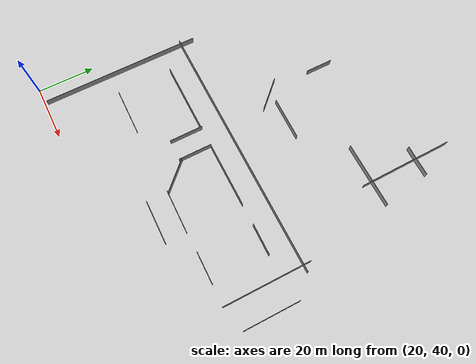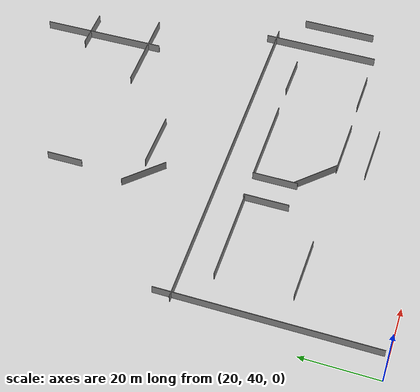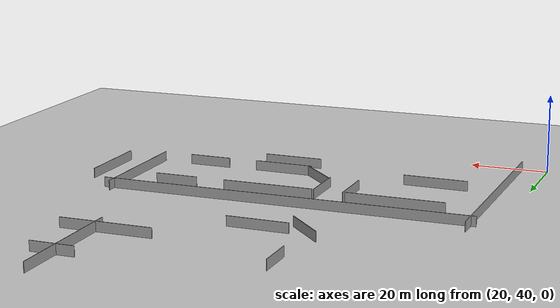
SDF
<sdf version="1.6">
 <world name="default">
  <model name="ground_plane">
   <static>1</static>
   <link name="link">
    <collision name="collision">
     <geometry><plane><normal>0 0 1</normal><size>100 100</size></plane></geometry>
     <surface>
      <contact><collide_bitmask>65535</collide_bitmask></contact>
      <friction><ode><mu>100</mu><mu2>50</mu2></ode></friction>
     </surface>
    </collision>
    <visual name="visual">
     <cast_shadows>0</cast_shadows>
     <geometry><plane><normal>0 0 1</normal><size>100 100</size></plane></geometry>
     <material>
      <script><uri>file://media/materials/scripts/gazebo.material</uri><name>Gazebo/Grey</name></script>
     </material>
    </visual>
   </link>
  </model>
  <model name="en_uzun_duvar2_clone">
   <link name="Wall_2">
    <inertial>
     <inertia><ixx>0</ixx><ixy>0</ixy><ixz>0</ixz><iyy>0</iyy><iyz>0</iyz><izz>0</izz></inertia>
     <mass>0</mass>
    </inertial>
    <visual name="Wall_2_Visual">
     <pose>0 0 1.25 0 -0 0</pose>
     <geometry><box><size>94.4523 0.15 2.5</size></box></geometry>
     <material>
      <script><uri>file://media/materials/scripts/gazebo.material</uri><name>Gazebo/Grey</name></script>
      <ambient>1 1 1 1</ambient>
     </material>
     <meta><layer>0</layer></meta>
    </visual>
    <collision name="Wall_2_Collision">
     <pose>0 0 1.25 0 -0 0</pose>
     <geometry><box><size>94.4523 0.15 2.5</size></box></geometry>
     <surface>
      <friction>
       <ode><mu>1</mu><mu2>1</mu2><fdir1>0 0 0</fdir1><slip1>0</slip1><slip2>0</slip2></ode>
       <torsional>
        <coefficient>1</coefficient>
        <patch_radius>0</patch_radius>
        <surface_radius>0</surface_radius>
        <use_patch_radius>1</use_patch_radius>
        <ode><slip>0</slip></ode>
       </torsional>
      </friction>
      <bounce><restitution_coefficient>0</restitution_coefficient><threshold>1e+06</threshold></bounce>
      <contact>
       <collide_without_contact>0</collide_without_contact>
       <collide_without_contact_bitmask>1</collide_without_contact_bitmask>
       <collide_bitmask>1</collide_bitmask>
       <ode>
        <soft_cfm>0</soft_cfm>
        <soft_erp>0.2</soft_erp>
        <kp>1e+13</kp>
        <kd>1</kd>
        <max_vel>0.01</max_vel>
        <min_depth>0</min_depth>
       </ode>
       <bullet>
        <split_impulse>1</split_impulse>
        <split_impulse_penetration_threshold>-0.01</split_impulse_penetration_threshold>
        <soft_cfm>0</soft_cfm>
        <soft_erp>0.2</soft_erp>
        <kp>1e+13</kp>
        <kd>1</kd>
       </bullet>
      </contact>
     </surface>
    </collision>
   </link>
   <static>1</static>
   <pose>72.3354 92.6336 0 0 -0 0</pose>
  </model>
  <model name="en_uzun_duvar2_clone_1">
   <link name="Wall_2">
    <pose>3.61471 -1e-06 0 0 -0 0</pose>
    <inertial>
     <inertia><ixx>0</ixx><ixy>0</ixy><ixz>0</ixz><iyy>0</iyy><iyz>0</iyz><izz>0</izz></inertia>
     <mass>0</mass>
    </inertial>
    <visual name="Wall_2_Visual">
     <pose>0 0 1.25 0 -0 0</pose>
     <geometry><box><size>56.4597 0.15 2.5</size></box></geometry>
     <material>
      <script><uri>file://media/materials/scripts/gazebo.material</uri><name>Gazebo/Grey</name></script>
      <ambient>1 1 1 1</ambient>
     </material>
     <meta><layer>0</layer></meta>
    </visual>
    <collision name="Wall_2_Collision">
     <pose>0 0 1.25 0 -0 0</pose>
     <geometry><box><size>56.4597 0.15 2.5</size></box></geometry>
     <surface>
      <friction>
       <ode><mu>1</mu><mu2>1</mu2><fdir1>0 0 0</fdir1><slip1>0</slip1><slip2>0</slip2></ode>
       <torsional>
        <coefficient>1</coefficient>
        <patch_radius>0</patch_radius>
        <surface_radius>0</surface_radius>
        <use_patch_radius>1</use_patch_radius>
        <ode><slip>0</slip></ode>
       </torsional>
      </friction>
      <bounce><restitution_coefficient>0</restitution_coefficient><threshold>1e+06</threshold></bounce>
      <contact>
       <collide_without_contact>0</collide_without_contact>
       <collide_without_contact_bitmask>1</collide_without_contact_bitmask>
       <collide_bitmask>1</collide_bitmask>
       <ode>
        <soft_cfm>0</soft_cfm>
        <soft_erp>0.2</soft_erp>
        <kp>1e+13</kp>
        <kd>1</kd>
        <max_vel>0.01</max_vel>
        <min_depth>0</min_depth>
       </ode>
       <bullet>
        <split_impulse>1</split_impulse>
        <split_impulse_penetration_threshold>-0.01</split_impulse_penetration_threshold>
        <soft_cfm>0</soft_cfm>
        <soft_erp>0.2</soft_erp>
        <kp>1e+13</kp>
        <kd>1</kd>
       </bullet>
      </contact>
     </surface>
    </collision>
   </link>
   <static>1</static>
   <pose>26.4078 65.6433 0 0 -0 1.57059</pose>
  </model>
  <model name="en_uzun_duvar2_clone_1_clone">
   <link name="Wall_2">
    <pose>10.2656 7.53235 0 0 -0 0</pose>
    <inertial>
     <inertia><ixx>0</ixx><ixy>0</ixy><ixz>0</ixz><iyy>0</iyy><iyz>0</iyz><izz>0</izz></inertia>
     <mass>0</mass>
    </inertial>
    <visual name="Wall_2_Visual">
     <pose>0 0 1.25 0 -0 0</pose>
     <geometry><box><size>30.968 0.15 2.5</size></box></geometry>
     <material>
      <script><uri>file://media/materials/scripts/gazebo.material</uri><name>Gazebo/Grey</name></script>
      <ambient>1 1 1 1</ambient>
     </material>
     <meta><layer>0</layer></meta>
    </visual>
    <collision name="Wall_2_Collision">
     <pose>0 0 1.25 0 -0 0</pose>
     <geometry><box><size>30.968 0.15 2.5</size></box></geometry>
     <surface>
      <friction>
       <ode><mu>1</mu><mu2>1</mu2><fdir1>0 0 0</fdir1><slip1>0</slip1><slip2>0</slip2></ode>
       <torsional>
        <coefficient>1</coefficient>
        <patch_radius>0</patch_radius>
        <surface_radius>0</surface_radius>
        <use_patch_radius>1</use_patch_radius>
        <ode><slip>0</slip></ode>
       </torsional>
      </friction>
      <bounce><restitution_coefficient>0</restitution_coefficient><threshold>1e+06</threshold></bounce>
      <contact>
       <collide_without_contact>0</collide_without_contact>
       <collide_without_contact_bitmask>1</collide_without_contact_bitmask>
       <collide_bitmask>1</collide_bitmask>
       <ode>
        <soft_cfm>0</soft_cfm>
        <soft_erp>0.2</soft_erp>
        <kp>1e+13</kp>
        <kd>1</kd>
        <max_vel>0.01</max_vel>
        <min_depth>0</min_depth>
       </ode>
       <bullet>
        <split_impulse>1</split_impulse>
        <split_impulse_penetration_threshold>-0.01</split_impulse_penetration_threshold>
        <soft_cfm>0</soft_cfm>
        <soft_erp>0.2</soft_erp>
        <kp>1e+13</kp>
        <kd>1</kd>
       </bullet>
      </contact>
     </surface>
    </collision>
   </link>
   <static>1</static>
   <pose>124.423 69.5169 0 0 -0 1.57059</pose>
  </model>
  <model name="en_uzun_duvar2_clone_1_clone_clone">
   <link name="Wall_2">
    <pose>10.2656 7.53235 0 0 -0 0</pose>
    <inertial>
     <inertia><ixx>0</ixx><ixy>0</ixy><ixz>0</ixz><iyy>0</iyy><iyz>0</iyz><izz>0</izz></inertia>
     <mass>0</mass>
    </inertial>
    <visual name="Wall_2_Visual">
     <pose>0 0 1.25 0 -0 0</pose>
     <geometry><box><size>19.779 0.15 2.5</size></box></geometry>
     <material>
      <script><uri>file://media/materials/scripts/gazebo.material</uri><name>Gazebo/Grey</name></script>
      <ambient>1 1 1 1</ambient>
     </material>
     <meta><layer>0</layer></meta>
    </visual>
    <collision name="Wall_2_Collision">
     <pose>0 0 1.25 0 -0 0</pose>
     <geometry><box><size>19.779 0.15 2.5</size></box></geometry>
     <surface>
      <friction>
       <ode><mu>1</mu><mu2>1</mu2><fdir1>0 0 0</fdir1><slip1>0</slip1><slip2>0</slip2></ode>
       <torsional>
        <coefficient>1</coefficient>
        <patch_radius>0</patch_radius>
        <surface_radius>0</surface_radius>
        <use_patch_radius>1</use_patch_radius>
        <ode><slip>0</slip></ode>
       </torsional>
      </friction>
      <bounce><restitution_coefficient>0</restitution_coefficient><threshold>1e+06</threshold></bounce>
      <contact>
       <collide_without_contact>0</collide_without_contact>
       <collide_without_contact_bitmask>1</collide_without_contact_bitmask>
       <collide_bitmask>1</collide_bitmask>
       <ode>
        <soft_cfm>0</soft_cfm>
        <soft_erp>0.2</soft_erp>
        <kp>1e+13</kp>
        <kd>1</kd>
        <max_vel>0.01</max_vel>
        <min_depth>0</min_depth>
       </ode>
       <bullet>
        <split_impulse>1</split_impulse>
        <split_impulse_penetration_threshold>-0.01</split_impulse_penetration_threshold>
        <soft_cfm>0</soft_cfm>
        <soft_erp>0.2</soft_erp>
        <kp>1e+13</kp>
        <kd>1</kd>
       </bullet>
      </contact>
     </surface>
    </collision>
   </link>
   <static>1</static>
   <pose>133.526 66.2954 0 0 -0 1.57059</pose>
  </model>
  <model name="en_uzun_duvar2_clone_1_clone_clone_clone">
   <link name="Wall_2">
    <pose>9.82359 7.53236 0 0 -0 0</pose>
    <inertial>
     <inertia><ixx>0</ixx><ixy>0</ixy><ixz>0</ixz><iyy>0</iyy><iyz>0</iyz><izz>0</izz></inertia>
     <mass>0</mass>
    </inertial>
    <visual name="Wall_2_Visual">
     <pose>0 0 1.25 0 -0 0</pose>
     <geometry><box><size>11.0273 0.15 2.5</size></box></geometry>
     <material>
      <script><uri>file://media/materials/scripts/gazebo.material</uri><name>Gazebo/Grey</name></script>
      <ambient>1 1 1 1</ambient>
     </material>
     <meta><layer>0</layer></meta>
    </visual>
    <collision name="Wall_2_Collision">
     <pose>0 0 1.25 0 -0 0</pose>
     <geometry><box><size>11.0273 0.15 2.5</size></box></geometry>
     <surface>
      <friction>
       <ode><mu>1</mu><mu2>1</mu2><fdir1>0 0 0</fdir1><slip1>0</slip1><slip2>0</slip2></ode>
       <torsional>
        <coefficient>1</coefficient>
        <patch_radius>0</patch_radius>
        <surface_radius>0</surface_radius>
        <use_patch_radius>1</use_patch_radius>
        <ode><slip>0</slip></ode>
       </torsional>
      </friction>
      <bounce><restitution_coefficient>0</restitution_coefficient><threshold>1e+06</threshold></bounce>
      <contact>
       <collide_without_contact>0</collide_without_contact>
       <collide_without_contact_bitmask>1</collide_without_contact_bitmask>
       <collide_bitmask>1</collide_bitmask>
       <ode>
        <soft_cfm>0</soft_cfm>
        <soft_erp>0.2</soft_erp>
        <kp>1e+13</kp>
        <kd>1</kd>
        <max_vel>0.01</max_vel>
        <min_depth>0</min_depth>
       </ode>
       <bullet>
        <split_impulse>1</split_impulse>
        <split_impulse_penetration_threshold>-0.01</split_impulse_penetration_threshold>
        <soft_cfm>0</soft_cfm>
        <soft_erp>0.2</soft_erp>
        <kp>1e+13</kp>
        <kd>1</kd>
       </bullet>
      </contact>
     </surface>
    </collision>
   </link>
   <static>1</static>
   <pose>114.047 151.034 0 0 -0 3.13031</pose>
  </model>
  <model name="en_uzun_duvar2_clone_1_clone_clone_clone_clone_4">
   <link name="Wall_2">
    <pose>9.82359 7.53236 0 0 -0 0</pose>
    <inertial>
     <inertia><ixx>0</ixx><ixy>0</ixy><ixz>0</ixz><iyy>0</iyy><iyz>0</iyz><izz>0</izz></inertia>
     <mass>0</mass>
    </inertial>
    <visual name="Wall_2_Visual">
     <pose>0 0 1.25 0 -0 0</pose>
     <geometry><box><size>11.0273 0.15 2.5</size></box></geometry>
     <material>
      <script><uri>file://media/materials/scripts/gazebo.material</uri><name>Gazebo/Grey</name></script>
      <ambient>1 1 1 1</ambient>
     </material>
     <meta><layer>0</layer></meta>
    </visual>
    <collision name="Wall_2_Collision">
     <pose>0 0 1.25 0 -0 0</pose>
     <geometry><box><size>11.0273 0.15 2.5</size></box></geometry>
     <surface>
      <friction>
       <ode><mu>1</mu><mu2>1</mu2><fdir1>0 0 0</fdir1><slip1>0</slip1><slip2>0</slip2></ode>
       <torsional>
        <coefficient>1</coefficient>
        <patch_radius>0</patch_radius>
        <surface_radius>0</surface_radius>
        <use_patch_radius>1</use_patch_radius>
        <ode><slip>0</slip></ode>
       </torsional>
      </friction>
      <bounce><restitution_coefficient>0</restitution_coefficient><threshold>1e+06</threshold></bounce>
      <contact>
       <collide_without_contact>0</collide_without_contact>
       <collide_without_contact_bitmask>1</collide_without_contact_bitmask>
       <collide_bitmask>1</collide_bitmask>
       <ode>
        <soft_cfm>0</soft_cfm>
        <soft_erp>0.2</soft_erp>
        <kp>1e+13</kp>
        <kd>1</kd>
        <max_vel>0.01</max_vel>
        <min_depth>0</min_depth>
       </ode>
       <bullet>
        <split_impulse>1</split_impulse>
        <split_impulse_penetration_threshold>-0.01</split_impulse_penetration_threshold>
        <soft_cfm>0</soft_cfm>
        <soft_erp>0.2</soft_erp>
        <kp>1e+13</kp>
        <kd>1</kd>
       </bullet>
      </contact>
     </surface>
    </collision>
   </link>
   <static>1</static>
   <pose>113.592 72.0962 0 0 -0 3.13031</pose>
  </model>
  <model name="en_uzun_duvar2_clone_1_clone_clone_clone_10_clone_3_clone_1_clone">
   <link name="Wall_2">
    <pose>10.2656 7.53235 0 0 -0 0</pose>
    <inertial>
     <inertia><ixx>0</ixx><ixy>0</ixy><ixz>0</ixz><iyy>0</iyy><iyz>0</iyz><izz>0</izz></inertia>
     <mass>0</mass>
    </inertial>
    <visual name="Wall_2_Visual">
     <pose>0 0 1.25 0 -0 0</pose>
     <geometry><box><size>11.8865 0.15 2.5</size></box></geometry>
     <material>
      <script><uri>file://media/materials/scripts/gazebo.material</uri><name>Gazebo/Grey</name></script>
      <ambient>1 1 1 1</ambient>
     </material>
     <meta><layer>0</layer></meta>
    </visual>
    <collision name="Wall_2_Collision">
     <pose>0 0 1.25 0 -0 0</pose>
     <geometry><box><size>11.8865 0.15 2.5</size></box></geometry>
     <surface>
      <friction>
       <ode><mu>1</mu><mu2>1</mu2><fdir1>0 0 0</fdir1><slip1>0</slip1><slip2>0</slip2></ode>
       <torsional>
        <coefficient>1</coefficient>
        <patch_radius>0</patch_radius>
        <surface_radius>0</surface_radius>
        <use_patch_radius>1</use_patch_radius>
        <ode><slip>0</slip></ode>
       </torsional>
      </friction>
      <bounce><restitution_coefficient>0</restitution_coefficient><threshold>1e+06</threshold></bounce>
      <contact>
       <collide_without_contact>0</collide_without_contact>
       <collide_without_contact_bitmask>1</collide_without_contact_bitmask>
       <collide_bitmask>1</collide_bitmask>
       <ode>
        <soft_cfm>0</soft_cfm>
        <soft_erp>0.2</soft_erp>
        <kp>1e+13</kp>
        <kd>1</kd>
        <max_vel>0.01</max_vel>
        <min_depth>0</min_depth>
       </ode>
       <bullet>
        <split_impulse>1</split_impulse>
        <split_impulse_penetration_threshold>-0.01</split_impulse_penetration_threshold>
        <soft_cfm>0</soft_cfm>
        <soft_erp>0.2</soft_erp>
        <kp>1e+13</kp>
        <kd>1</kd>
       </bullet>
      </contact>
     </surface>
    </collision>
   </link>
   <static>1</static>
   <pose>74.8147 68.6065 0 0 -0 1.57059</pose>
  </model>
  <model name="en_uzun_duvar2_clone_1_clone_clone_clone_10_clone_3_clone_1_clone_0">
   <link name="Wall_2">
    <pose>10.2656 7.53235 0 0 -0 0</pose>
    <inertial>
     <inertia><ixx>0</ixx><ixy>0</ixy><ixz>0</ixz><iyy>0</iyy><iyz>0</iyz><izz>0</izz></inertia>
     <mass>0</mass>
    </inertial>
    <visual name="Wall_2_Visual">
     <pose>0 0 1.25 0 -0 0</pose>
     <geometry><box><size>11.8865 0.15 2.5</size></box></geometry>
     <material>
      <script><uri>file://media/materials/scripts/gazebo.material</uri><name>Gazebo/Grey</name></script>
      <ambient>1 1 1 1</ambient>
     </material>
     <meta><layer>0</layer></meta>
    </visual>
    <collision name="Wall_2_Collision">
     <pose>0 0 1.25 0 -0 0</pose>
     <geometry><box><size>11.8865 0.15 2.5</size></box></geometry>
     <surface>
      <friction>
       <ode><mu>1</mu><mu2>1</mu2><fdir1>0 0 0</fdir1><slip1>0</slip1><slip2>0</slip2></ode>
       <torsional>
        <coefficient>1</coefficient>
        <patch_radius>0</patch_radius>
        <surface_radius>0</surface_radius>
        <use_patch_radius>1</use_patch_radius>
        <ode><slip>0</slip></ode>
       </torsional>
      </friction>
      <bounce><restitution_coefficient>0</restitution_coefficient><threshold>1e+06</threshold></bounce>
      <contact>
       <collide_without_contact>0</collide_without_contact>
       <collide_without_contact_bitmask>1</collide_without_contact_bitmask>
       <collide_bitmask>1</collide_bitmask>
       <ode>
        <soft_cfm>0</soft_cfm>
        <soft_erp>0.2</soft_erp>
        <kp>1e+13</kp>
        <kd>1</kd>
        <max_vel>0.01</max_vel>
        <min_depth>0</min_depth>
       </ode>
       <bullet>
        <split_impulse>1</split_impulse>
        <split_impulse_penetration_threshold>-0.01</split_impulse_penetration_threshold>
        <soft_cfm>0</soft_cfm>
        <soft_erp>0.2</soft_erp>
        <kp>1e+13</kp>
        <kd>1</kd>
       </bullet>
      </contact>
     </surface>
    </collision>
   </link>
   <static>1</static>
   <pose>67.3655 68.7815 0 0 -0 1.57059</pose>
  </model>
  <model name="en_uzun_duvar2_clone_1_clone_clone_clone_clone_4_clone">
   <link name="Wall_2">
    <pose>9.82359 7.53236 0 0 -0 0</pose>
    <inertial>
     <inertia><ixx>0</ixx><ixy>0</ixy><ixz>0</ixz><iyy>0</iyy><iyz>0</iyz><izz>0</izz></inertia>
     <mass>0</mass>
    </inertial>
    <visual name="Wall_2_Visual">
     <pose>0 0 1.25 0 -0 0</pose>
     <geometry><box><size>11.0273 0.15 2.5</size></box></geometry>
     <material>
      <script><uri>file://media/materials/scripts/gazebo.material</uri><name>Gazebo/Grey</name></script>
      <ambient>1 1 1 1</ambient>
     </material>
     <meta><layer>0</layer></meta>
    </visual>
    <collision name="Wall_2_Collision">
     <pose>0 0 1.25 0 -0 0</pose>
     <geometry><box><size>11.0273 0.15 2.5</size></box></geometry>
     <surface>
      <friction>
       <ode><mu>1</mu><mu2>1</mu2><fdir1>0 0 0</fdir1><slip1>0</slip1><slip2>0</slip2></ode>
       <torsional>
        <coefficient>1</coefficient>
        <patch_radius>0</patch_radius>
        <surface_radius>0</surface_radius>
        <use_patch_radius>1</use_patch_radius>
        <ode><slip>0</slip></ode>
       </torsional>
      </friction>
      <bounce><restitution_coefficient>0</restitution_coefficient><threshold>1e+06</threshold></bounce>
      <contact>
       <collide_without_contact>0</collide_without_contact>
       <collide_without_contact_bitmask>1</collide_without_contact_bitmask>
       <collide_bitmask>1</collide_bitmask>
       <ode>
        <soft_cfm>0</soft_cfm>
        <soft_erp>0.2</soft_erp>
        <kp>1e+13</kp>
        <kd>1</kd>
        <max_vel>0.01</max_vel>
        <min_depth>0</min_depth>
       </ode>
       <bullet>
        <split_impulse>1</split_impulse>
        <split_impulse_penetration_threshold>-0.01</split_impulse_penetration_threshold>
        <soft_cfm>0</soft_cfm>
        <soft_erp>0.2</soft_erp>
        <kp>1e+13</kp>
        <kd>1</kd>
       </bullet>
      </contact>
     </surface>
    </collision>
   </link>
   <static>1</static>
   <pose>113.694 91.9854 0 0 -0 3.13031</pose>
  </model>
  <model name="en_uzun_duvar2_clone_1_clone_clone_clone_4">
   <link name="Wall_2">
    <pose>10.2656 7.53235 0 0 -0 0</pose>
    <inertial>
     <inertia><ixx>0</ixx><ixy>0</ixy><ixz>0</ixz><iyy>0</iyy><iyz>0</iyz><izz>0</izz></inertia>
     <mass>0</mass>
    </inertial>
    <visual name="Wall_2_Visual">
     <pose>0 0 1.25 0 -0 0</pose>
     <geometry><box><size>23.1907 0.15 2.5</size></box></geometry>
     <material>
      <script><uri>file://media/materials/scripts/gazebo.material</uri><name>Gazebo/Grey</name></script>
      <ambient>1 1 1 1</ambient>
     </material>
     <meta><layer>0</layer></meta>
    </visual>
    <collision name="Wall_2_Collision">
     <pose>0 0 1.25 0 -0 0</pose>
     <geometry><box><size>23.1907 0.15 2.5</size></box></geometry>
     <surface>
      <friction>
       <ode><mu>1</mu><mu2>1</mu2><fdir1>0 0 0</fdir1><slip1>0</slip1><slip2>0</slip2></ode>
       <torsional>
        <coefficient>1</coefficient>
        <patch_radius>0</patch_radius>
        <surface_radius>0</surface_radius>
        <use_patch_radius>1</use_patch_radius>
        <ode><slip>0</slip></ode>
       </torsional>
      </friction>
      <bounce><restitution_coefficient>0</restitution_coefficient><threshold>1e+06</threshold></bounce>
      <contact>
       <collide_without_contact>0</collide_without_contact>
       <collide_without_contact_bitmask>1</collide_without_contact_bitmask>
       <collide_bitmask>1</collide_bitmask>
       <ode>
        <soft_cfm>0</soft_cfm>
        <soft_erp>0.2</soft_erp>
        <kp>1e+13</kp>
        <kd>1</kd>
        <max_vel>0.01</max_vel>
        <min_depth>0</min_depth>
       </ode>
       <bullet>
        <split_impulse>1</split_impulse>
        <split_impulse_penetration_threshold>-0.01</split_impulse_penetration_threshold>
        <soft_cfm>0</soft_cfm>
        <soft_erp>0.2</soft_erp>
        <kp>1e+13</kp>
        <kd>1</kd>
       </bullet>
      </contact>
     </surface>
    </collision>
   </link>
   <static>1</static>
   <pose>111.152 133.89 0 0 -0 3.14036</pose>
  </model>
  <model name="en_uzun_duvar2_clone_1_clone_clone_clone_4_clone">
   <link name="Wall_2">
    <pose>10.2656 7.53235 0 0 -0 0</pose>
    <inertial>
     <inertia><ixx>0</ixx><ixy>0</ixy><ixz>0</ixz><iyy>0</iyy><iyz>0</iyz><izz>0</izz></inertia>
     <mass>0</mass>
    </inertial>
    <visual name="Wall_2_Visual">
     <pose>0 0 1.25 0 -0 0</pose>
     <geometry><box><size>23.1907 0.15 2.5</size></box></geometry>
     <material>
      <script><uri>file://media/materials/scripts/gazebo.material</uri><name>Gazebo/Grey</name></script>
      <ambient>1 1 1 1</ambient>
     </material>
     <meta><layer>0</layer></meta>
    </visual>
    <collision name="Wall_2_Collision">
     <pose>0 0 1.25 0 -0 0</pose>
     <geometry><box><size>23.1907 0.15 2.5</size></box></geometry>
     <surface>
      <friction>
       <ode><mu>1</mu><mu2>1</mu2><fdir1>0 0 0</fdir1><slip1>0</slip1><slip2>0</slip2></ode>
       <torsional>
        <coefficient>1</coefficient>
        <patch_radius>0</patch_radius>
        <surface_radius>0</surface_radius>
        <use_patch_radius>1</use_patch_radius>
        <ode><slip>0</slip></ode>
       </torsional>
      </friction>
      <bounce><restitution_coefficient>0</restitution_coefficient><threshold>1e+06</threshold></bounce>
      <contact>
       <collide_without_contact>0</collide_without_contact>
       <collide_without_contact_bitmask>1</collide_without_contact_bitmask>
       <collide_bitmask>1</collide_bitmask>
       <ode>
        <soft_cfm>0</soft_cfm>
        <soft_erp>0.2</soft_erp>
        <kp>1e+13</kp>
        <kd>1</kd>
        <max_vel>0.01</max_vel>
        <min_depth>0</min_depth>
       </ode>
       <bullet>
        <split_impulse>1</split_impulse>
        <split_impulse_penetration_threshold>-0.01</split_impulse_penetration_threshold>
        <soft_cfm>0</soft_cfm>
        <soft_erp>0.2</soft_erp>
        <kp>1e+13</kp>
        <kd>1</kd>
       </bullet>
      </contact>
     </surface>
    </collision>
   </link>
   <static>1</static>
   <pose>89.6147 92.1431 0 0 -0 3.14036</pose>
  </model>
  <model name="en_uzun_duvar2_clone_1_clone_clone_clone_4_clone_3_clone_2">
   <link name="Wall_2">
    <pose>10.2656 7.53235 0 0 -0 0</pose>
    <inertial>
     <inertia><ixx>0</ixx><ixy>0</ixy><ixz>0</ixz><iyy>0</iyy><iyz>0</iyz><izz>0</izz></inertia>
     <mass>0</mass>
    </inertial>
    <visual name="Wall_2_Visual">
     <pose>0 0 1.25 0 -0 0</pose>
     <geometry><box><size>24.9029 0.15 2.5</size></box></geometry>
     <material>
      <script><uri>file://media/materials/scripts/gazebo.material</uri><name>Gazebo/Grey</name></script>
      <ambient>1 1 1 1</ambient>
     </material>
     <meta><layer>0</layer></meta>
    </visual>
    <collision name="Wall_2_Collision">
     <pose>0 0 1.25 0 -0 0</pose>
     <geometry><box><size>24.9029 0.15 2.5</size></box></geometry>
     <surface>
      <friction>
       <ode><mu>1</mu><mu2>1</mu2><fdir1>0 0 0</fdir1><slip1>0</slip1><slip2>0</slip2></ode>
       <torsional>
        <coefficient>1</coefficient>
        <patch_radius>0</patch_radius>
        <surface_radius>0</surface_radius>
        <use_patch_radius>1</use_patch_radius>
        <ode><slip>0</slip></ode>
       </torsional>
      </friction>
      <bounce><restitution_coefficient>0</restitution_coefficient><threshold>1e+06</threshold></bounce>
      <contact>
       <collide_without_contact>0</collide_without_contact>
       <collide_without_contact_bitmask>1</collide_without_contact_bitmask>
       <collide_bitmask>1</collide_bitmask>
       <ode>
        <soft_cfm>0</soft_cfm>
        <soft_erp>0.2</soft_erp>
        <kp>1e+13</kp>
        <kd>1</kd>
        <max_vel>0.01</max_vel>
        <min_depth>0</min_depth>
       </ode>
       <bullet>
        <split_impulse>1</split_impulse>
        <split_impulse_penetration_threshold>-0.01</split_impulse_penetration_threshold>
        <soft_cfm>0</soft_cfm>
        <soft_erp>0.2</soft_erp>
        <kp>1e+13</kp>
        <kd>1</kd>
       </bullet>
      </contact>
     </surface>
    </collision>
   </link>
   <static>1</static>
   <pose>57.2512 92.1077 0 0 -0 3.14036</pose>
  </model>
  <model name="en_uzun_duvar2_clone_1_clone_clone_clone_10_clone_4">
   <link name="Wall_2">
    <pose>10.2656 7.53235 0 0 -0 0</pose>
    <inertial>
     <inertia><ixx>0</ixx><ixy>0</ixy><ixz>0</ixz><iyy>0</iyy><iyz>0</iyz><izz>0</izz></inertia>
     <mass>0</mass>
    </inertial>
    <visual name="Wall_2_Visual">
     <pose>0 0 1.25 0 -0 0</pose>
     <geometry><box><size>16.4275 0.15 2.5</size></box></geometry>
     <material>
      <script><uri>file://media/materials/scripts/gazebo.material</uri><name>Gazebo/Grey</name></script>
      <ambient>1 1 1 1</ambient>
     </material>
     <meta><layer>0</layer></meta>
    </visual>
    <collision name="Wall_2_Collision">
     <pose>0 0 1.25 0 -0 0</pose>
     <geometry><box><size>16.4275 0.15 2.5</size></box></geometry>
     <surface>
      <friction>
       <ode><mu>1</mu><mu2>1</mu2><fdir1>0 0 0</fdir1><slip1>0</slip1><slip2>0</slip2></ode>
       <torsional>
        <coefficient>1</coefficient>
        <patch_radius>0</patch_radius>
        <surface_radius>0</surface_radius>
        <use_patch_radius>1</use_patch_radius>
        <ode><slip>0</slip></ode>
       </torsional>
      </friction>
      <bounce><restitution_coefficient>0</restitution_coefficient><threshold>1e+06</threshold></bounce>
      <contact>
       <collide_without_contact>0</collide_without_contact>
       <collide_without_contact_bitmask>1</collide_without_contact_bitmask>
       <collide_bitmask>1</collide_bitmask>
       <ode>
        <soft_cfm>0</soft_cfm>
        <soft_erp>0.2</soft_erp>
        <kp>1e+13</kp>
        <kd>1</kd>
        <max_vel>0.01</max_vel>
        <min_depth>0</min_depth>
       </ode>
       <bullet>
        <split_impulse>1</split_impulse>
        <split_impulse_penetration_threshold>-0.01</split_impulse_penetration_threshold>
        <soft_cfm>0</soft_cfm>
        <soft_erp>0.2</soft_erp>
        <kp>1e+13</kp>
        <kd>1</kd>
       </bullet>
      </contact>
     </surface>
    </collision>
   </link>
   <static>1</static>
   <pose>53.1614 71.998 0 0 -0 3.12481</pose>
  </model>
  <model name="en_uzun_duvar2_clone_1_clone_clone_clone_10">
   <link name="Wall_2">
    <pose>10.2656 7.53235 0 0 -0 0</pose>
    <inertial>
     <inertia><ixx>0</ixx><ixy>0</ixy><ixz>0</ixz><iyy>0</iyy><iyz>0</iyz><izz>0</izz></inertia>
     <mass>0</mass>
    </inertial>
    <visual name="Wall_2_Visual">
     <pose>0 0 1.25 0 -0 0</pose>
     <geometry><box><size>15.3113 0.15 2.5</size></box></geometry>
     <material>
      <script><uri>file://media/materials/scripts/gazebo.material</uri><name>Gazebo/Grey</name></script>
      <ambient>1 1 1 1</ambient>
     </material>
     <meta><layer>0</layer></meta>
    </visual>
    <collision name="Wall_2_Collision">
     <pose>0 0 1.25 0 -0 0</pose>
     <geometry><box><size>15.3113 0.15 2.5</size></box></geometry>
     <surface>
      <friction>
       <ode><mu>1</mu><mu2>1</mu2><fdir1>0 0 0</fdir1><slip1>0</slip1><slip2>0</slip2></ode>
       <torsional>
        <coefficient>1</coefficient>
        <patch_radius>0</patch_radius>
        <surface_radius>0</surface_radius>
        <use_patch_radius>1</use_patch_radius>
        <ode><slip>0</slip></ode>
       </torsional>
      </friction>
      <bounce><restitution_coefficient>0</restitution_coefficient><threshold>1e+06</threshold></bounce>
      <contact>
       <collide_without_contact>0</collide_without_contact>
       <collide_without_contact_bitmask>1</collide_without_contact_bitmask>
       <collide_bitmask>1</collide_bitmask>
       <ode>
        <soft_cfm>0</soft_cfm>
        <soft_erp>0.2</soft_erp>
        <kp>1e+13</kp>
        <kd>1</kd>
        <max_vel>0.01</max_vel>
        <min_depth>0</min_depth>
       </ode>
       <bullet>
        <split_impulse>1</split_impulse>
        <split_impulse_penetration_threshold>-0.01</split_impulse_penetration_threshold>
        <soft_cfm>0</soft_cfm>
        <soft_erp>0.2</soft_erp>
        <kp>1e+13</kp>
        <kd>1</kd>
       </bullet>
      </contact>
     </surface>
    </collision>
   </link>
   <static>1</static>
   <pose>80.6629 119.572 0 0 -0 3.12481</pose>
  </model>
  <model name="en_uzun_duvar2_clone_1_clone_clone_clone_10_clone_6">
   <link name="Wall_2">
    <pose>10.2656 7.53235 0 0 -0 0</pose>
    <inertial>
     <inertia><ixx>0</ixx><ixy>0</ixy><ixz>0</ixz><iyy>0</iyy><iyz>0</iyz><izz>0</izz></inertia>
     <mass>0</mass>
    </inertial>
    <visual name="Wall_2_Visual">
     <pose>0 0 1.25 0 -0 0</pose>
     <geometry><box><size>15.3113 0.15 2.5</size></box></geometry>
     <material>
      <script><uri>file://media/materials/scripts/gazebo.material</uri><name>Gazebo/Grey</name></script>
      <ambient>1 1 1 1</ambient>
     </material>
     <meta><layer>0</layer></meta>
    </visual>
    <collision name="Wall_2_Collision">
     <pose>0 0 1.25 0 -0 0</pose>
     <geometry><box><size>15.3113 0.15 2.5</size></box></geometry>
     <surface>
      <friction>
       <ode><mu>1</mu><mu2>1</mu2><fdir1>0 0 0</fdir1><slip1>0</slip1><slip2>0</slip2></ode>
       <torsional>
        <coefficient>1</coefficient>
        <patch_radius>0</patch_radius>
        <surface_radius>0</surface_radius>
        <use_patch_radius>1</use_patch_radius>
        <ode><slip>0</slip></ode>
       </torsional>
      </friction>
      <bounce><restitution_coefficient>0</restitution_coefficient><threshold>1e+06</threshold></bounce>
      <contact>
       <collide_without_contact>0</collide_without_contact>
       <collide_without_contact_bitmask>1</collide_without_contact_bitmask>
       <collide_bitmask>1</collide_bitmask>
       <ode>
        <soft_cfm>0</soft_cfm>
        <soft_erp>0.2</soft_erp>
        <kp>1e+13</kp>
        <kd>1</kd>
        <max_vel>0.01</max_vel>
        <min_depth>0</min_depth>
       </ode>
       <bullet>
        <split_impulse>1</split_impulse>
        <split_impulse_penetration_threshold>-0.01</split_impulse_penetration_threshold>
        <soft_cfm>0</soft_cfm>
        <soft_erp>0.2</soft_erp>
        <kp>1e+13</kp>
        <kd>1</kd>
       </bullet>
      </contact>
     </surface>
    </collision>
   </link>
   <static>1</static>
   <pose>93.7326 64.506 0 0 -0 3.12481</pose>
  </model>
  <model name="en_uzun_duvar2_clone_1_clone_clone_clone_10_clone_7">
   <link name="Wall_2">
    <pose>10.2656 7.53235 0 0 -0 0</pose>
    <inertial>
     <inertia><ixx>0</ixx><ixy>0</ixy><ixz>0</ixz><iyy>0</iyy><iyz>0</iyz><izz>0</izz></inertia>
     <mass>0</mass>
    </inertial>
    <visual name="Wall_2_Visual">
     <pose>0 0 1.25 0 -0 0</pose>
     <geometry><box><size>15.3113 0.15 2.5</size></box></geometry>
     <material>
      <script><uri>file://media/materials/scripts/gazebo.material</uri><name>Gazebo/Grey</name></script>
      <ambient>1 1 1 1</ambient>
     </material>
     <meta><layer>0</layer></meta>
    </visual>
    <collision name="Wall_2_Collision">
     <pose>0 0 1.25 0 -0 0</pose>
     <geometry><box><size>15.3113 0.15 2.5</size></box></geometry>
     <surface>
      <friction>
       <ode><mu>1</mu><mu2>1</mu2><fdir1>0 0 0</fdir1><slip1>0</slip1><slip2>0</slip2></ode>
       <torsional>
        <coefficient>1</coefficient>
        <patch_radius>0</patch_radius>
        <surface_radius>0</surface_radius>
        <use_patch_radius>1</use_patch_radius>
        <ode><slip>0</slip></ode>
       </torsional>
      </friction>
      <bounce><restitution_coefficient>0</restitution_coefficient><threshold>1e+06</threshold></bounce>
      <contact>
       <collide_without_contact>0</collide_without_contact>
       <collide_without_contact_bitmask>1</collide_without_contact_bitmask>
       <collide_bitmask>1</collide_bitmask>
       <ode>
        <soft_cfm>0</soft_cfm>
        <soft_erp>0.2</soft_erp>
        <kp>1e+13</kp>
        <kd>1</kd>
        <max_vel>0.01</max_vel>
        <min_depth>0</min_depth>
       </ode>
       <bullet>
        <split_impulse>1</split_impulse>
        <split_impulse_penetration_threshold>-0.01</split_impulse_penetration_threshold>
        <soft_cfm>0</soft_cfm>
        <soft_erp>0.2</soft_erp>
        <kp>1e+13</kp>
        <kd>1</kd>
       </bullet>
      </contact>
     </surface>
    </collision>
   </link>
   <static>1</static>
   <pose>93.5418 71.9972 0 0 -0 3.12481</pose>
  </model>
  <model name="en_uzun_duvar2_clone_1_clone_clone_clone_10_clone_3_clone_1">
   <link name="Wall_2">
    <pose>10.2656 7.53235 0 0 -0 0</pose>
    <inertial>
     <inertia><ixx>0</ixx><ixy>0</ixy><ixz>0</ixz><iyy>0</iyy><iyz>0</iyz><izz>0</izz></inertia>
     <mass>0</mass>
    </inertial>
    <visual name="Wall_2_Visual">
     <pose>0 0 1.25 0 -0 0</pose>
     <geometry><box><size>12.5656 0.15 2.5</size></box></geometry>
     <material>
      <script><uri>file://media/materials/scripts/gazebo.material</uri><name>Gazebo/Grey</name></script>
      <ambient>1 1 1 1</ambient>
     </material>
     <meta><layer>0</layer></meta>
    </visual>
    <collision name="Wall_2_Collision">
     <pose>0 0 1.25 0 -0 0</pose>
     <geometry><box><size>12.5656 0.15 2.5</size></box></geometry>
     <surface>
      <friction>
       <ode><mu>1</mu><mu2>1</mu2><fdir1>0 0 0</fdir1><slip1>0</slip1><slip2>0</slip2></ode>
       <torsional>
        <coefficient>1</coefficient>
        <patch_radius>0</patch_radius>
        <surface_radius>0</surface_radius>
        <use_patch_radius>1</use_patch_radius>
        <ode><slip>0</slip></ode>
       </torsional>
      </friction>
      <bounce><restitution_coefficient>0</restitution_coefficient><threshold>1e+06</threshold></bounce>
      <contact>
       <collide_without_contact>0</collide_without_contact>
       <collide_without_contact_bitmask>1</collide_without_contact_bitmask>
       <collide_bitmask>1</collide_bitmask>
       <ode>
        <soft_cfm>0</soft_cfm>
        <soft_erp>0.2</soft_erp>
        <kp>1e+13</kp>
        <kd>1</kd>
        <max_vel>0.01</max_vel>
        <min_depth>0</min_depth>
       </ode>
       <bullet>
        <split_impulse>1</split_impulse>
        <split_impulse_penetration_threshold>-0.01</split_impulse_penetration_threshold>
        <soft_cfm>0</soft_cfm>
        <soft_erp>0.2</soft_erp>
        <kp>1e+13</kp>
        <kd>1</kd>
       </bullet>
      </contact>
     </surface>
    </collision>
   </link>
   <static>1</static>
   <pose>46.6526 113.594 0 0 0 -0.797705</pose>
  </model>
  <model name="en_uzun_duvar2_clone_1_clone_clone_clone_10_clone_3_clone_1_clone_4">
   <link name="Wall_2">
    <pose>10.2656 7.53235 0 0 -0 0</pose>
    <inertial>
     <inertia><ixx>0</ixx><ixy>0</ixy><ixz>0</ixz><iyy>0</iyy><iyz>0</iyz><izz>0</izz></inertia>
     <mass>0</mass>
    </inertial>
    <visual name="Wall_2_Visual">
     <pose>0 0 1.25 0 -0 0</pose>
     <geometry><box><size>12.5656 0.15 2.5</size></box></geometry>
     <material>
      <script><uri>file://media/materials/scripts/gazebo.material</uri><name>Gazebo/Grey</name></script>
      <ambient>1 1 1 1</ambient>
     </material>
     <meta><layer>0</layer></meta>
    </visual>
    <collision name="Wall_2_Collision">
     <pose>0 0 1.25 0 -0 0</pose>
     <geometry><box><size>12.5656 0.15 2.5</size></box></geometry>
     <surface>
      <friction>
       <ode><mu>1</mu><mu2>1</mu2><fdir1>0 0 0</fdir1><slip1>0</slip1><slip2>0</slip2></ode>
       <torsional>
        <coefficient>1</coefficient>
        <patch_radius>0</patch_radius>
        <surface_radius>0</surface_radius>
        <use_patch_radius>1</use_patch_radius>
        <ode><slip>0</slip></ode>
       </torsional>
      </friction>
      <bounce><restitution_coefficient>0</restitution_coefficient><threshold>1e+06</threshold></bounce>
      <contact>
       <collide_without_contact>0</collide_without_contact>
       <collide_without_contact_bitmask>1</collide_without_contact_bitmask>
       <collide_bitmask>1</collide_bitmask>
       <ode>
        <soft_cfm>0</soft_cfm>
        <soft_erp>0.2</soft_erp>
        <kp>1e+13</kp>
        <kd>1</kd>
        <max_vel>0.01</max_vel>
        <min_depth>0</min_depth>
       </ode>
       <bullet>
        <split_impulse>1</split_impulse>
        <split_impulse_penetration_threshold>-0.01</split_impulse_penetration_threshold>
        <soft_cfm>0</soft_cfm>
        <soft_erp>0.2</soft_erp>
        <kp>1e+13</kp>
        <kd>1</kd>
       </bullet>
      </contact>
     </surface>
    </collision>
   </link>
   <static>1</static>
   <pose>59.2842 71.3958 0 0 0 -0.797705</pose>
  </model>
  <model name="en_uzun_duvar2_clone_1_clone_clone_clone_4_clone_3">
   <link name="Wall_2">
    <pose>10.2656 7.53235 0 0 -0 0</pose>
    <inertial>
     <inertia><ixx>0</ixx><ixy>0</ixy><ixz>0</ixz><iyy>0</iyy><iyz>0</iyz><izz>0</izz></inertia>
     <mass>0</mass>
    </inertial>
    <visual name="Wall_2_Visual">
     <pose>0 0 1.25 0 -0 0</pose>
     <geometry><box><size>33.2978 0.15 2.5</size></box></geometry>
     <material>
      <script><uri>file://media/materials/scripts/gazebo.material</uri><name>Gazebo/Grey</name></script>
      <ambient>1 1 1 1</ambient>
     </material>
     <meta><layer>0</layer></meta>
    </visual>
    <collision name="Wall_2_Collision">
     <pose>0 0 1.25 0 -0 0</pose>
     <geometry><box><size>33.2978 0.15 2.5</size></box></geometry>
     <surface>
      <friction>
       <ode><mu>1</mu><mu2>1</mu2><fdir1>0 0 0</fdir1><slip1>0</slip1><slip2>0</slip2></ode>
       <torsional>
        <coefficient>1</coefficient>
        <patch_radius>0</patch_radius>
        <surface_radius>0</surface_radius>
        <use_patch_radius>1</use_patch_radius>
        <ode><slip>0</slip></ode>
       </torsional>
      </friction>
      <bounce><restitution_coefficient>0</restitution_coefficient><threshold>1e+06</threshold></bounce>
      <contact>
       <collide_without_contact>0</collide_without_contact>
       <collide_without_contact_bitmask>1</collide_without_contact_bitmask>
       <collide_bitmask>1</collide_bitmask>
       <ode>
        <soft_cfm>0</soft_cfm>
        <soft_erp>0.2</soft_erp>
        <kp>1e+13</kp>
        <kd>1</kd>
        <max_vel>0.01</max_vel>
        <min_depth>0</min_depth>
       </ode>
       <bullet>
        <split_impulse>1</split_impulse>
        <split_impulse_penetration_threshold>-0.01</split_impulse_penetration_threshold>
        <soft_cfm>0</soft_cfm>
        <soft_erp>0.2</soft_erp>
        <kp>1e+13</kp>
        <kd>1</kd>
       </bullet>
      </contact>
     </surface>
    </collision>
   </link>
   <static>1</static>
   <pose>110.802 129.52 0 0 -0 1.57982</pose>
  </model>
  <model name="en_uzun_duvar2_clone_1_clone_clone_clone_10_clone_3">
   <link name="Wall_2">
    <pose>10.2656 7.53235 0 0 -0 0</pose>
    <inertial>
     <inertia><ixx>0</ixx><ixy>0</ixy><ixz>0</ixz><iyy>0</iyy><iyz>0</iyz><izz>0</izz></inertia>
     <mass>0</mass>
    </inertial>
    <visual name="Wall_2_Visual">
     <pose>0 0 1.25 0 -0 0</pose>
     <geometry><box><size>9.49506 0.15 2.5</size></box></geometry>
     <material>
      <script><uri>file://media/materials/scripts/gazebo.material</uri><name>Gazebo/Grey</name></script>
      <ambient>1 1 1 1</ambient>
     </material>
     <meta><layer>0</layer></meta>
    </visual>
    <collision name="Wall_2_Collision">
     <pose>0 0 1.25 0 -0 0</pose>
     <geometry><box><size>9.49506 0.15 2.5</size></box></geometry>
     <surface>
      <friction>
       <ode><mu>1</mu><mu2>1</mu2><fdir1>0 0 0</fdir1><slip1>0</slip1><slip2>0</slip2></ode>
       <torsional>
        <coefficient>1</coefficient>
        <patch_radius>0</patch_radius>
        <surface_radius>0</surface_radius>
        <use_patch_radius>1</use_patch_radius>
        <ode><slip>0</slip></ode>
       </torsional>
      </friction>
      <bounce><restitution_coefficient>0</restitution_coefficient><threshold>1e+06</threshold></bounce>
      <contact>
       <collide_without_contact>0</collide_without_contact>
       <collide_without_contact_bitmask>1</collide_without_contact_bitmask>
       <collide_bitmask>1</collide_bitmask>
       <ode>
        <soft_cfm>0</soft_cfm>
        <soft_erp>0.2</soft_erp>
        <kp>1e+13</kp>
        <kd>1</kd>
        <max_vel>0.01</max_vel>
        <min_depth>0</min_depth>
       </ode>
       <bullet>
        <split_impulse>1</split_impulse>
        <split_impulse_penetration_threshold>-0.01</split_impulse_penetration_threshold>
        <soft_cfm>0</soft_cfm>
        <soft_erp>0.2</soft_erp>
        <kp>1e+13</kp>
        <kd>1</kd>
       </bullet>
      </contact>
     </surface>
    </collision>
   </link>
   <static>1</static>
   <pose>65.0281 122.426 0 0 -0 1.57059</pose>
  </model>
 </world>
</sdf>
